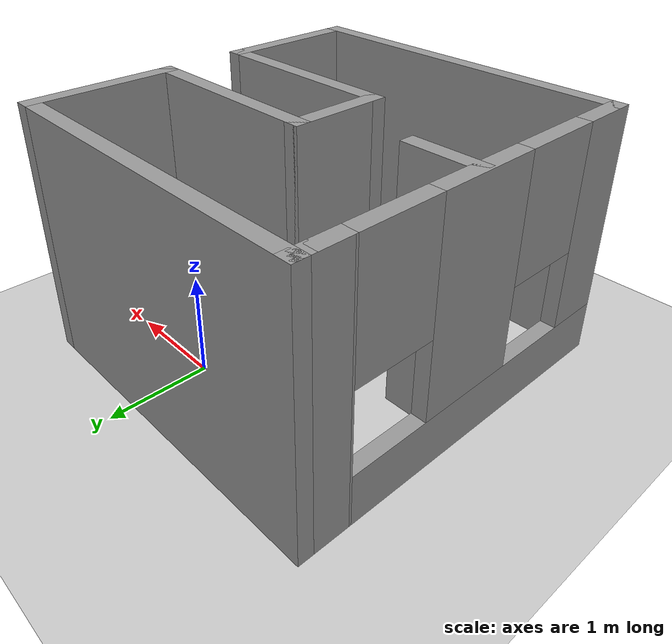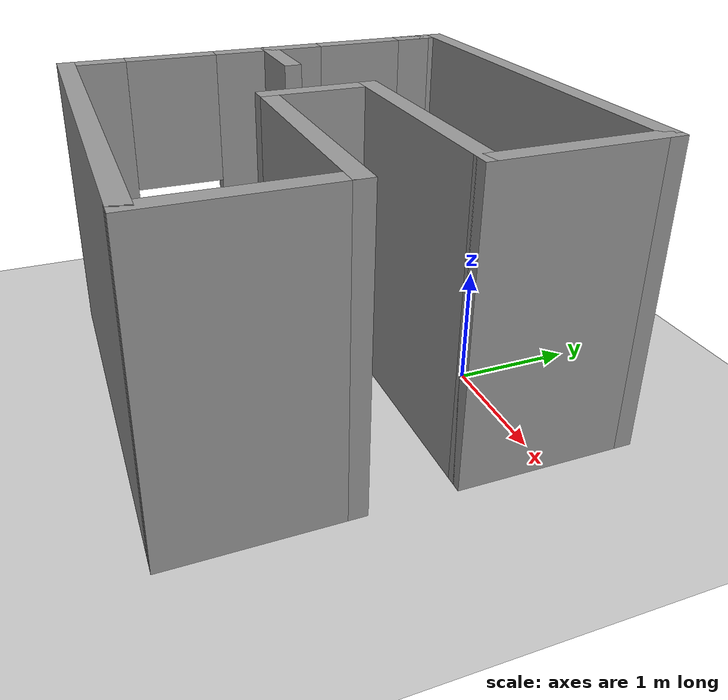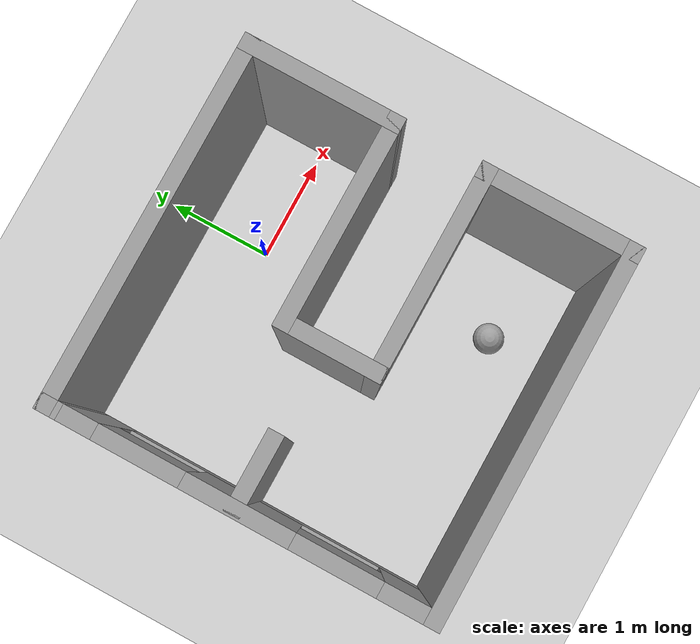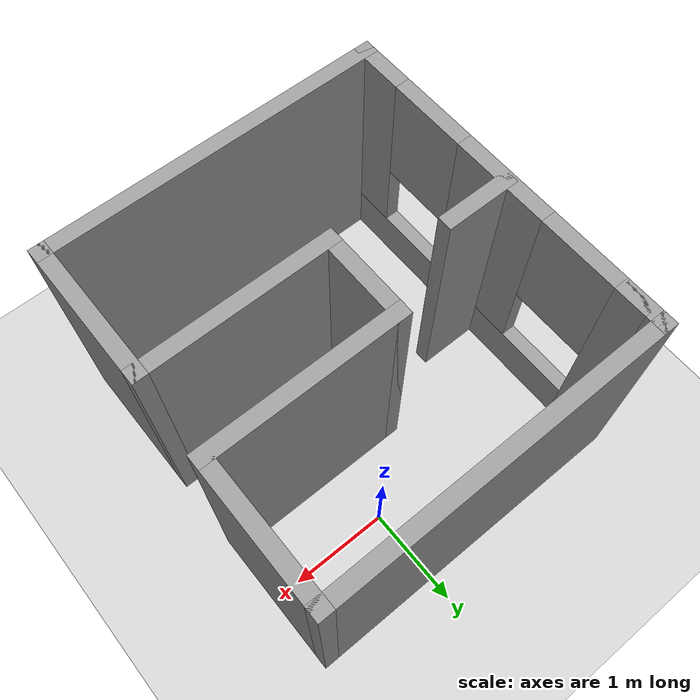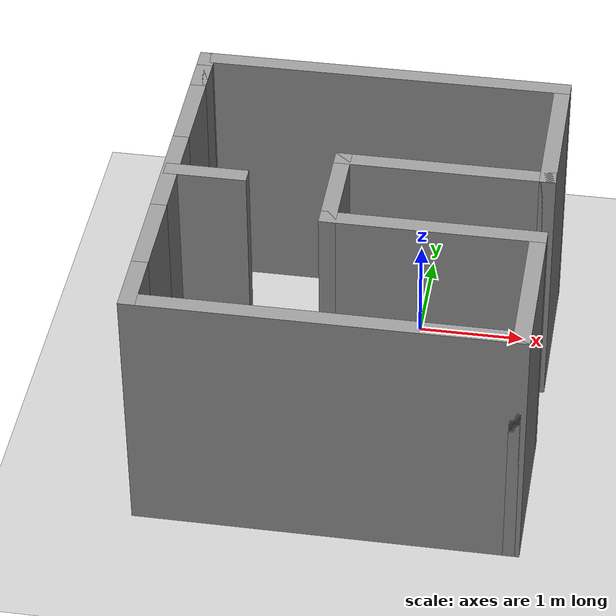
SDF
<sdf version="1.6">
 <world name="default">
  <light name="sun" type="directional">
   <pose>0 0 10 0 -0 0</pose>
   <diffuse>0.8 0.8 0.8 1</diffuse>
   <specular>0.2 0.2 0.2 1</specular>
   <attenuation>
    <range>1000</range>
    <constant>0.9</constant>
    <linear>0.01</linear>
    <quadratic>0.001</quadratic>
   </attenuation>
   <direction>-0.5 0.1 -0.9</direction>
  </light>
  <model name="ground_plane">
   <static>1</static>
   <link name="link">
    <collision name="collision">
     <geometry><plane><normal>0 0 1</normal><size>100 100</size></plane></geometry>
     <surface>
      <contact><collide_bitmask>65535</collide_bitmask></contact>
      <friction><ode><mu>100</mu><mu2>50</mu2></ode></friction>
     </surface>
    </collision>
    <visual name="visual">
     <cast_shadows>0</cast_shadows>
     <geometry><plane><normal>0 0 1</normal><size>100 100</size></plane></geometry>
     <material>
      <script><uri>file://media/materials/scripts/gazebo.material</uri><name>Gazebo/Grey</name></script>
     </material>
    </visual>
   </link>
  </model>
  <gravity>0 0 -9.8</gravity>
  <magnetic_field>6e-06 2.3e-05 -4.2e-05</magnetic_field>
  <atmosphere type="adiabatic"/>
  <physics name="default_physics" default="0" type="ode">
   <max_step_size>0.001</max_step_size>
   <real_time_factor>1</real_time_factor>
   <real_time_update_rate>1000</real_time_update_rate>
  </physics>
  <scene><ambient>0.4 0.4 0.4 1</ambient><background>0.7 0.7 0.7 1</background><shadows>1</shadows></scene>
  <audio><device>default</device></audio>
  <spherical_coordinates>
   <surface_model>EARTH_WGS84</surface_model>
   <latitude_deg>0</latitude_deg>
   <longitude_deg>0</longitude_deg>
   <elevation>0</elevation>
   <heading_deg>0</heading_deg>
  </spherical_coordinates>
  <model name="easy_4">
   <pose>-0.474784 -1.08378 0 0 -0 0</pose>
   <link name="Wall_12">
    <pose>-1.675 -0.1 0 0 -0 -1.5708</pose>
    <visual name="Wall_12_Visual_0">
     <pose>-1.58867 0 1.25 0 -0 0</pose>
     <geometry><box><size>0.322657 0.15 2.5</size></box></geometry>
     <material>
      <script><uri>file://media/materials/scripts/gazebo.material</uri><name>Gazebo/Grey</name></script>
      <ambient>1 1 1 1</ambient>
     </material>
     <meta><layer>0</layer></meta>
    </visual>
    <collision name="Wall_12_Collision_0">
     <geometry><box><size>0.322657 0.15 2.5</size></box></geometry>
     <pose>-1.58867 0 1.25 0 -0 0</pose>
    </collision>
    <visual name="Wall_12_Visual_1">
     <pose>0.161329 0 0.25 0 -0 0</pose>
     <geometry><box><size>3.17734 0.15 0.5</size></box></geometry>
     <material>
      <script><uri>file://media/materials/scripts/gazebo.material</uri><name>Gazebo/Grey</name></script>
      <ambient>1 1 1 1</ambient>
     </material>
     <meta><layer>0</layer></meta>
    </visual>
    <collision name="Wall_12_Collision_1">
     <geometry><box><size>3.17734 0.15 0.5</size></box></geometry>
     <pose>0.161329 0 0.25 0 -0 0</pose>
    </collision>
    <visual name="Wall_12_Visual_2">
     <pose>-0.125249 0 1.5 0 -0 0</pose>
     <geometry><box><size>1.00419 0.15 2</size></box></geometry>
     <material>
      <script><uri>file://media/materials/scripts/gazebo.material</uri><name>Gazebo/Grey</name></script>
      <ambient>1 1 1 1</ambient>
     </material>
     <meta><layer>0</layer></meta>
    </visual>
    <collision name="Wall_12_Collision_2">
     <geometry><box><size>1.00419 0.15 2</size></box></geometry>
     <pose>-0.125249 0 1.5 0 -0 0</pose>
    </collision>
    <visual name="Wall_12_Visual_3">
     <pose>1.46342 0 1.5 0 -0 0</pose>
     <geometry><box><size>0.573155 0.15 2</size></box></geometry>
     <material>
      <script><uri>file://media/materials/scripts/gazebo.material</uri><name>Gazebo/Grey</name></script>
      <ambient>1 1 1 1</ambient>
     </material>
     <meta><layer>0</layer></meta>
    </visual>
    <collision name="Wall_12_Collision_3">
     <geometry><box><size>0.573155 0.15 2</size></box></geometry>
     <pose>1.46342 0 1.5 0 -0 0</pose>
    </collision>
    <visual name="Wall_12_Visual_4">
     <pose>-1.02734 0 1.9 0 -0 0</pose>
     <geometry><box><size>0.8 0.15 1.2</size></box></geometry>
     <material>
      <script><uri>file://media/materials/scripts/gazebo.material</uri><name>Gazebo/Grey</name></script>
      <ambient>1 1 1 1</ambient>
     </material>
     <meta><layer>0</layer></meta>
    </visual>
    <collision name="Wall_12_Collision_4">
     <geometry><box><size>0.8 0.15 1.2</size></box></geometry>
     <pose>-1.02734 0 1.9 0 -0 0</pose>
    </collision>
    <visual name="Wall_12_Visual_5">
     <pose>0.776845 0 1.9 0 -0 0</pose>
     <geometry><box><size>0.8 0.15 1.2</size></box></geometry>
     <material>
      <script><uri>file://media/materials/scripts/gazebo.material</uri><name>Gazebo/Grey</name></script>
      <ambient>1 1 1 1</ambient>
     </material>
     <meta><layer>0</layer></meta>
    </visual>
    <collision name="Wall_12_Collision_5">
     <geometry><box><size>0.8 0.15 1.2</size></box></geometry>
     <pose>0.776845 0 1.9 0 -0 0</pose>
    </collision>
   </link>
   <link name="Wall_13">
    <collision name="Wall_13_Collision">
     <geometry><box><size>3.5 0.15 2.5</size></box></geometry>
     <pose>0 0 1.25 0 -0 0</pose>
    </collision>
    <visual name="Wall_13_Visual">
     <pose>0 0 1.25 0 -0 0</pose>
     <geometry><box><size>3.5 0.15 2.5</size></box></geometry>
     <material>
      <script><uri>file://media/materials/scripts/gazebo.material</uri><name>Gazebo/Grey</name></script>
      <ambient>1 1 1 1</ambient>
     </material>
     <meta><layer>0</layer></meta>
    </visual>
    <pose>0 -1.775 0 0 -0 0</pose>
   </link>
   <link name="Wall_14">
    <collision name="Wall_14_Collision">
     <geometry><box><size>1.5 0.15 2.5</size></box></geometry>
     <pose>0 0 1.25 0 -0 0</pose>
    </collision>
    <visual name="Wall_14_Visual">
     <pose>0 0 1.25 0 -0 0</pose>
     <geometry><box><size>1.5 0.15 2.5</size></box></geometry>
     <material>
      <script><uri>file://media/materials/scripts/gazebo.material</uri><name>Gazebo/Grey</name></script>
      <ambient>1 1 1 1</ambient>
     </material>
     <meta><layer>0</layer></meta>
    </visual>
    <pose>1.675 -1.1 0 0 -0 1.5708</pose>
   </link>
   <link name="Wall_15">
    <collision name="Wall_15_Collision">
     <geometry><box><size>2 0.15 2.5</size></box></geometry>
     <pose>0 0 1.25 0 -0 0</pose>
    </collision>
    <visual name="Wall_15_Visual">
     <pose>0 0 1.25 0 -0 0</pose>
     <geometry><box><size>2 0.15 2.5</size></box></geometry>
     <material>
      <script><uri>file://media/materials/scripts/gazebo.material</uri><name>Gazebo/Grey</name></script>
      <ambient>1 1 1 1</ambient>
     </material>
     <meta><layer>0</layer></meta>
    </visual>
    <pose>0.75 -0.425 0 0 -0 3.14159</pose>
   </link>
   <link name="Wall_16">
    <collision name="Wall_16_Collision">
     <geometry><box><size>1 0.15 2.5</size></box></geometry>
     <pose>0 0 1.25 0 -0 0</pose>
    </collision>
    <visual name="Wall_16_Visual">
     <pose>0 0 1.25 0 -0 0</pose>
     <geometry><box><size>1 0.15 2.5</size></box></geometry>
     <material>
      <script><uri>file://media/materials/scripts/gazebo.material</uri><name>Gazebo/Grey</name></script>
      <ambient>1 1 1 1</ambient>
     </material>
     <meta><layer>0</layer></meta>
    </visual>
    <pose>-0.175 0 0 0 -0 1.5708</pose>
   </link>
   <link name="Wall_17">
    <collision name="Wall_17_Collision">
     <geometry><box><size>2 0.15 2.5</size></box></geometry>
     <pose>0 0 1.25 0 -0 0</pose>
    </collision>
    <visual name="Wall_17_Visual">
     <pose>0 0 1.25 0 -0 0</pose>
     <geometry><box><size>2 0.15 2.5</size></box></geometry>
     <material>
      <script><uri>file://media/materials/scripts/gazebo.material</uri><name>Gazebo/Grey</name></script>
      <ambient>1 1 1 1</ambient>
     </material>
     <meta><layer>0</layer></meta>
    </visual>
    <pose>0.75 0.425 0 0 -0 0</pose>
   </link>
   <link name="Wall_18">
    <collision name="Wall_18_Collision">
     <geometry><box><size>1.5 0.15 2.5</size></box></geometry>
     <pose>0 0 1.25 0 -0 0</pose>
    </collision>
    <visual name="Wall_18_Visual">
     <pose>0 0 1.25 0 -0 0</pose>
     <geometry><box><size>1.5 0.15 2.5</size></box></geometry>
     <material>
      <script><uri>file://media/materials/scripts/gazebo.material</uri><name>Gazebo/Grey</name></script>
      <ambient>1 1 1 1</ambient>
     </material>
     <meta><layer>0</layer></meta>
    </visual>
    <pose>1.675 1.1 0 0 -0 1.5708</pose>
   </link>
   <link name="Wall_19">
    <collision name="Wall_19_Collision">
     <geometry><box><size>3.5 0.15 2.5</size></box></geometry>
     <pose>0 0 1.25 0 -0 0</pose>
    </collision>
    <visual name="Wall_19_Visual">
     <pose>0 0 1.25 0 -0 0</pose>
     <geometry><box><size>3.5 0.15 2.5</size></box></geometry>
     <material>
      <script><uri>file://media/materials/scripts/gazebo.material</uri><name>Gazebo/Grey</name></script>
      <ambient>1 1 1 1</ambient>
     </material>
     <meta><layer>0</layer></meta>
    </visual>
    <pose>0 1.775 0 0 -0 3.14159</pose>
   </link>
   <link name="Wall_20">
    <collision name="Wall_20_Collision">
     <geometry><box><size>0.15 0.15 2.5</size></box></geometry>
     <pose>0 0 1.25 0 -0 0</pose>
    </collision>
    <visual name="Wall_20_Visual">
     <pose>0 0 1.25 0 -0 0</pose>
     <geometry><box><size>0.15 0.15 2.5</size></box></geometry>
     <material>
      <script><uri>file://media/materials/scripts/gazebo.material</uri><name>Gazebo/Grey</name></script>
      <ambient>1 1 1 1</ambient>
     </material>
     <meta><layer>0</layer></meta>
    </visual>
    <pose>-1.675 1.775 0 0 -0 0</pose>
   </link>
   <link name="Wall_21">
    <collision name="Wall_21_Collision">
     <geometry><box><size>0.5 0.15 2.5</size></box></geometry>
     <pose>0 0 1.25 0 -0 0</pose>
    </collision>
    <visual name="Wall_21_Visual">
     <pose>0 0 1.25 0 -0 0</pose>
     <geometry><box><size>0.5 0.15 2.5</size></box></geometry>
     <material>
      <script><uri>file://media/materials/scripts/gazebo.material</uri><name>Gazebo/Grey</name></script>
      <ambient>1 1 1 1</ambient>
     </material>
     <meta><layer>0</layer></meta>
    </visual>
    <pose>-1.675 1.6 0 0 -0 -1.5708</pose>
   </link>
   <link name="Wall_23">
    <collision name="Wall_23_Collision">
     <geometry><box><size>0.75 0.15 2.5</size></box></geometry>
     <pose>0 0 1.25 0 -0 0</pose>
    </collision>
    <visual name="Wall_23_Visual">
     <pose>0 0 1.25 0 -0 0</pose>
     <geometry><box><size>0.75 0.15 2.5</size></box></geometry>
     <material>
      <script><uri>file://media/materials/scripts/gazebo.material</uri><name>Gazebo/Grey</name></script>
      <ambient>1 1 1 1</ambient>
     </material>
     <meta><layer>0</layer></meta>
    </visual>
    <pose>-1.35187 0.04838 0 0 -0 0</pose>
   </link>
   <static>1</static>
  </model>
  <model name="Sphere_radius_15cm">
   <link name="link">
    <inertial>
     <mass>1</mass>
     <inertia><ixx>0.1</ixx><ixy>0</ixy><ixz>0</ixz><iyy>0.1</iyy><iyz>0</iyz><izz>0.1</izz></inertia>
    </inertial>
    <visual name="visual">
     <geometry><sphere><radius>0.15</radius></sphere></geometry>
     <material>
      <script><name>Gazebo/Grey</name><uri>file://media/materials/scripts/gazebo.material</uri></script>
      <shader type="vertex"><normal_map>__default__</normal_map></shader>
      <ambient>0.3 0.3 0.3 1</ambient>
      <diffuse>0.7 0.7 0.7 1</diffuse>
      <specular>0.01 0.01 0.01 1</specular>
      <emissive>0 0 0 1</emissive>
     </material>
    </visual>
    <collision name="collision">
     <geometry><sphere><radius>0.15</radius></sphere></geometry>
     <surface>
      <friction>
       <ode><mu>1</mu><mu2>1</mu2><fdir1>0 0 0</fdir1><slip1>0</slip1><slip2>0</slip2></ode>
       <torsional>
        <coefficient>1</coefficient>
        <patch_radius>0</patch_radius>
        <surface_radius>0</surface_radius>
        <use_patch_radius>1</use_patch_radius>
        <ode><slip>0</slip></ode>
       </torsional>
      </friction>
      <bounce><restitution_coefficient>0</restitution_coefficient><threshold>1e+06</threshold></bounce>
      <contact>
       <collide_without_contact>0</collide_without_contact>
       <collide_without_contact_bitmask>1</collide_without_contact_bitmask>
       <collide_bitmask>1</collide_bitmask>
       <ode>
        <soft_cfm>0</soft_cfm>
        <soft_erp>0.2</soft_erp>
        <kp>1e+13</kp>
        <kd>1</kd>
        <max_vel>0.01</max_vel>
        <min_depth>0</min_depth>
       </ode>
       <bullet>
        <split_impulse>1</split_impulse>
        <split_impulse_penetration_threshold>-0.01</split_impulse_penetration_threshold>
        <soft_cfm>0</soft_cfm>
        <soft_erp>0.2</soft_erp>
        <kp>1e+13</kp>
        <kd>1</kd>
       </bullet>
      </contact>
     </surface>
    </collision>
   </link>
   <static>0</static>
   <pose>0.322357 -2.26389 0 0 -0 0</pose>
  </model>
 </world>
</sdf>
